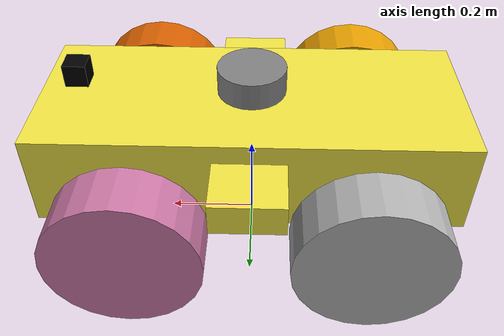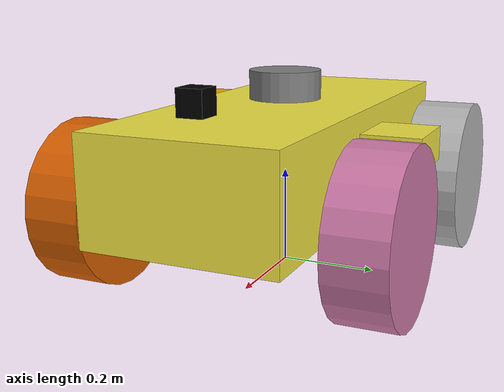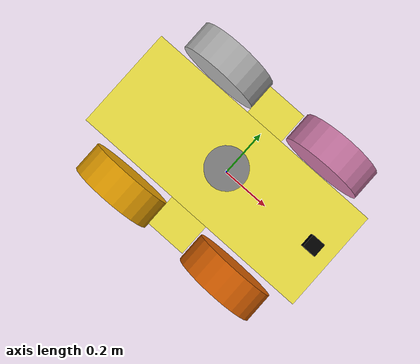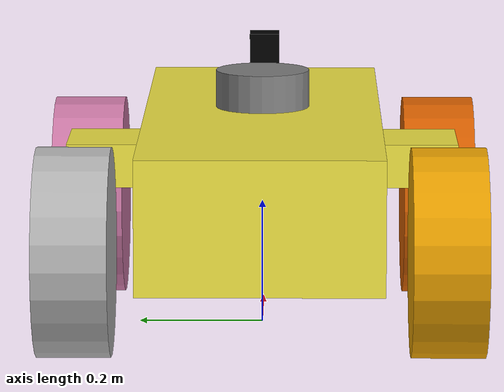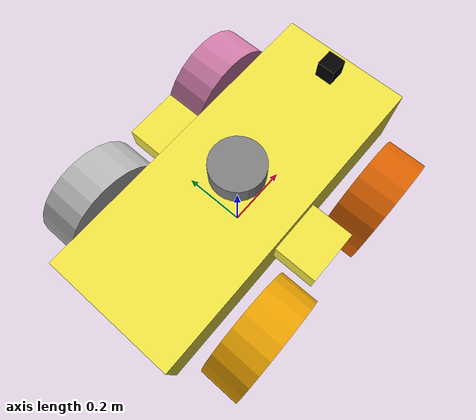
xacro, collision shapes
<?xml version="1.0"?>

<robot name="scout_v2" xmlns:xacro="http://ros.org/wiki/xacro">

	<!-- odometry source: world ground truth or wheels encoders -->
	<xacro:arg name="odometry_source" default="ground_truth" />

	<xacro:arg name="sim" default="true" />

	<xacro:include filename="$(find agilex_scout_description)/urdf/robot/scout_v2.urdf.xacro" />
	<xacro:scout_v2 odometry_source="$(arg odometry_source)" sim="$(arg sim)" />

	<xacro:unless value="$(arg sim)">

		<xacro:include filename="$(find agilex_scout_description)/urdf/sensors/os1.urdf" />

		<joint name="os1_joint" type="fixed">
			<origin xyz="0.2 0.0 0.64" rpy="0.0 0.0 0.0" />
			<parent link="mobile_robot_base_link" />
			<child link="os_sensor" />
		</joint>

	</xacro:unless>

</robot>

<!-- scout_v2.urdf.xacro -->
<robot name="scout_v2" xmlns:xacro="http://ros.org/wiki/xacro">

	<xacro:macro name="scout_v2" params="odometry_source sim">

		<!-- Collision boxes geometries -->
		<xacro:property name="base_x_size" value="0.9250000" />
		<xacro:property name="base_y_size" value="0.380000" />
		<xacro:property name="base_z_size" value="0.210000" />

		<!-- Vehicle geometries -->
		<xacro:property name="wheelbase" value="0.498" />
		<xacro:property name="track" value="0.58306" />
		<xacro:property name="wheel_vertical_offset" value="-0.0702" />

		<xacro:property name="wheel_length" value="1.1653e-01" />
		<xacro:property name="wheel_radius" value="1.6459e-01" />

		<!-- Virtual joints to link to ground and to odom -->
		<link name="base_footprint" />

		<link name="base_footprint_inertial_link">
			<inertial>
				<mass value="50" />
				<origin xyz="0.0 0.0 0.0" />
				<inertia ixx="2.288641" ixy="0" ixz="0" iyy="5.103976" iyz="0" izz="3.431465" />
			</inertial>
		</link>

		<joint name="base_footprint_inertial_joint" type="fixed">
			<origin xyz="0 0 0" rpy="0 0 0" />
			<parent link="base_footprint" />
			<child link="base_footprint_inertial_link" />
		</joint>

		<joint name="base_footprint_to_base_link" type="fixed">
			<origin xyz="0 0 ${wheel_radius - wheel_vertical_offset}" rpy="0 0 0" />
			<parent link="base_footprint" />
			<child link="base_link" />
		</joint>

		<link name="base_link" />

		<joint name="base_link_to_mobile_robot" type="fixed">
			<origin xyz="0 0 0" rpy="0 0 0" />
			<parent link="base_link" />
			<child link="mobile_robot_base_link" />
		</joint>

		<!-- Base link -->
		<link name="mobile_robot_base_link">
			<visual>
				<origin xyz="0 0 0" rpy="0 0 0" />
				<geometry>
					<mesh filename="file://$(find agilex_scout_description)/meshes/robot/mobile_robot_base_link.dae" />
				</geometry>
			</visual>
			<collision>
				<origin xyz="0 0 0.008" rpy="0 0 0" />
				<geometry>
					<box size="${base_x_size} ${base_y_size} ${base_z_size}" />
				</geometry>
			</collision>
			<collision>
				<origin xyz="0 0 ${base_z_size/6}" rpy="0 0 0" />
				<geometry>
					<box size="${base_x_size/6} ${base_y_size*1.65} ${base_z_size/3}" />
				</geometry>
			</collision>
		</link>

		<link name="inertial_link">
			<inertial>
				<mass value="50" />
				<origin xyz="0.0 0.0 0.0" />
				<inertia ixx="2.288641" ixy="0" ixz="0" iyy="5.103976" iyz="0" izz="3.431465" />
			</inertial>
		</link>

		<joint name="inertial_joint" type="fixed">
			<origin xyz="0 0 0" rpy="0 0 0" />
			<parent link="mobile_robot_base_link" />
			<child link="inertial_link" />
		</joint>

		<!-- Scout wheel macros -->
		<xacro:include filename="$(find agilex_scout_description)/urdf/robot/scout_wheel_type1.xacro" />
		<xacro:include filename="$(find agilex_scout_description)/urdf/robot/scout_wheel_type2.xacro" />

		<xacro:scout_wheel_type1 wheel_prefix="front_right" x="${wheelbase/2}" y="${-track/2}" z="${wheel_vertical_offset}" phi="0" />
		<xacro:scout_wheel_type2 wheel_prefix="front_left" x="${wheelbase/2}" y="${track/2}" z="${wheel_vertical_offset}" phi="0" />
		<xacro:scout_wheel_type1 wheel_prefix="rear_left" x="${-wheelbase/2}" y="${track/2}" z="${wheel_vertical_offset}" phi="0" />
		<xacro:scout_wheel_type2 wheel_prefix="rear_right" x="${-wheelbase/2}" y="${-track/2}" z="${wheel_vertical_offset}" phi="0" />

		<link name="front_mount" />

		<joint name="front_mount_joint" type="fixed">
			<origin xyz="0.325 0.0 0.112701" rpy="0 0 0" />
			<parent link="mobile_robot_base_link" />
			<child link="front_mount" />
		</joint>

		<link name="rear_mount" />

		<joint name="rear_mount_joint" type="fixed">
			<origin xyz="-0.325 0.0 0.112701" rpy="0 0 0" />
			<parent link="mobile_robot_base_link" />
			<child link="rear_mount" />
		</joint>

		<!-- Gazebo definitions  -->
		<xacro:if value="${sim}">
			<xacro:include filename="$(find agilex_scout_description)/urdf/robot/scout_v2.gazebo" />
		</xacro:if>

		<!-- Camera: ADDED TO HAVE IMAGES FOR THE MEMORY GRAPH -->
		<link name="camera_link">
            <visual>
                <geometry>
                    <box size="0.05 0.05 0.05"/>
                </geometry>
                <material name="black">
                    <color rgba="0 0 0 1"/>
                </material>
            </visual>
            <collision>
                <geometry>
                    <box size="0.05 0.05 0.05"/>
                </geometry>
            </collision>
            <inertial>
                <mass value="0.1"/>
                <inertia ixx="0.0001" ixy="0" ixz="0" iyy="0.0001" iyz="0" izz="0.0001"/>
            </inertial>
        </link>

        <joint name="camera_joint" type="fixed">
            <origin xyz="0.05 0 0.05" rpy="0 0 0"/>
            <parent link="front_mount"/>
            <child link="camera_link"/>
        </joint>

        <gazebo reference="camera_link">
            <sensor name="scout_camera" type="camera">
                <pose>0 0 0 0 0 0</pose>
                <visualize>true</visualize>
                <update_rate>30</update_rate>
                <topic>camera/image_raw</topic> <camera>
                    <horizontal_fov>1.36136</horizontal_fov>
                    <image>
                        <width>1920</width>
                        <height>1080</height>
                        <format>R8G8B8</format>
                    </image>
                    <clip>
                        <near>0.1</near>
                        <far>100</far>
                    </clip>
                </camera>
            </sensor>
        </gazebo>

	</xacro:macro>

</robot>

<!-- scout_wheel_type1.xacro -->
<robot xmlns:xacro="http://ros.org/wiki/xacro" name="scout_v2">

	<xacro:macro name="scout_wheel_type1" params="wheel_prefix x y z phi">

		<link name="${wheel_prefix}_wheel_link">
			<inertial>
				<mass value="8" />
				<origin xyz="0 0 0" />
				<inertia ixx="0.1171" ixy="0" ixz="0" iyy="0.1361" iyz="0" izz="0.1171" />
			</inertial>
			<visual>
				<origin xyz="0 0 0" rpy="0 0 0" />
				<geometry>
					<mesh filename="file://$(find agilex_scout_description)/meshes/robot/wheel_type1.dae" />
				</geometry>
			</visual>
			<collision>
				<origin xyz="0 0 0" rpy="${pi/2} 0 0" />
				<geometry>
					<cylinder length="${wheel_length}" radius="${wheel_radius}" />
				</geometry>
				<surface>
					<contact>
						<ode>
							<min_depth>0.001</min_depth>
							<kp>1000000000.0</kp>
							<kd>0.0</kd>
						</ode>
					</contact>
					<friction>
						<ode>
							<mu>0.9</mu>
							<mu2>0.7</mu2>
							<fdir1>1 0 0</fdir1>
						</ode>
					</friction>
				</surface>
			</collision>
		</link>

		<!-- if gazebo is loaded, simulate the robot wheel rotations and broadcast the join states-->
		<xacro:if value="$(arg sim)">
			<joint name="${wheel_prefix}_wheel" type="continuous">
				<parent link="mobile_robot_base_link" />
				<child link="${wheel_prefix}_wheel_link" />
				<origin xyz="${x} ${y} ${z}" rpy="${phi} 0.0 0.0" />
				<axis xyz="0 1 0" rpy="0 0 0" />
				<dynamics damping="0.0" friction="20" />
			</joint>
		</xacro:if>

		<!-- if real robot is loaded, fixed wheels are used because no joint broadcaster is available -->
		<xacro:unless value="$(arg sim)">
			<joint name="${wheel_prefix}_wheel" type="fixed">
				<parent link="mobile_robot_base_link" />
				<child link="${wheel_prefix}_wheel_link" />
				<origin xyz="${x} ${y} ${z}" rpy="${phi} 0.0 0.0" />
				<axis xyz="0 1 0" rpy="0 0 0" />
			</joint>
		</xacro:unless>

	</xacro:macro>

</robot>

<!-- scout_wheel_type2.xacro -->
<robot xmlns:xacro="http://ros.org/wiki/xacro" name="scout_v2">

	<xacro:macro name="scout_wheel_type2" params="wheel_prefix x y z phi">

		<link name="${wheel_prefix}_wheel_link">
			<inertial>
				<mass value="8" />
				<origin xyz="0 0 0" />
				<inertia ixx="0.1171" ixy="0" ixz="0" iyy="0.1361" iyz="0" izz="0.1171" />
			</inertial>
			<visual>
				<origin xyz="0 0 0" rpy="0 0 0" />
				<geometry>
					<mesh filename="file://$(find agilex_scout_description)/meshes/robot/wheel_type2.dae" />
				</geometry>
			</visual>
			<collision>
				<origin xyz="0 0 0" rpy="${pi/2} 0 0" />
				<geometry>
					<cylinder length="${wheel_length}" radius="${wheel_radius}" />
				</geometry>
				<surface>
					<contact>
						<ode>
							<min_depth>0.001</min_depth>
							<kp>1000000000.0</kp>
							<kd>0.0</kd>
						</ode>
					</contact>
					<friction>
						<ode>
							<mu>0.9</mu>
							<mu2>0.7</mu2>
							<fdir1>1 0 0</fdir1>
						</ode>
					</friction>
				</surface>
			</collision>
		</link>

		<!-- if gazebo is loaded, simulate the robot wheel rotations and broadcast the join states-->
		<xacro:if value="$(arg sim)">
			<joint name="${wheel_prefix}_wheel" type="continuous">
				<parent link="mobile_robot_base_link" />
				<child link="${wheel_prefix}_wheel_link" />
				<origin xyz="${x} ${y} ${z}" rpy="${phi} 0.0 0.0" />
				<axis xyz="0 1 0" rpy="0 0 0" />
				<dynamics damping="0.0" friction="20" />
			</joint>
		</xacro:if>

		<!-- if real robot is loaded, fixed wheels are used because no joint broadcaster is available -->
		<xacro:unless value="$(arg sim)">
			<joint name="${wheel_prefix}_wheel" type="fixed">
				<parent link="mobile_robot_base_link" />
				<child link="${wheel_prefix}_wheel_link" />
				<origin xyz="${x} ${y} ${z}" rpy="${phi} 0.0 0.0" />
				<axis xyz="0 1 0" rpy="0 0 0" />
			</joint>
		</xacro:unless>

	</xacro:macro>

</robot>

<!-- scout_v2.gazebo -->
<robot xmlns:xacro="http://ros.org/wiki/xacro" name="scout_v2">

	<material name="light_grey">
		<color rgba="0.5 0.5 0.5 1" />
	</material>

	<!-- LIDAR link and joint : cylinder on top of the robot center -->
	<link name="lidar_3d">
		<collision>
			<origin xyz="0 0 0" rpy="0 0 0" />
			<geometry>
				<cylinder length="0.06" radius="0.075" />
			</geometry>
		</collision>
		<visual>
			<origin xyz="0 0 0" rpy="0 0 0" />
			<geometry>
				<cylinder length="0.06" radius="0.075" />
			</geometry>
			<material name="light_grey" />
		</visual>
		<inertial>
			<origin xyz="0 0 0" rpy="0 0 0" />
			<mass value="0.1" />
			<inertia ixx="${0.1 *(3*0.075*0.075 + 0.06*0.06)/ 12}" ixy="0" ixz="0"
				iyy="${0.1 *(3*0.075*0.075 + 0.06*0.06)/ 12}"
				iyz="0" izz="${0.1*0.075*0.075 / 2}" />
		</inertial>
	</link>

	<joint name="mobile_robot_to_lidar_3d" type="fixed">
		<parent link="mobile_robot_base_link" />
		<child link="lidar_3d" />
		<origin xyz="0.0 0 0.15" rpy="0 0 0" />
	</joint>

	<gazebo reference="lidar_3d">
		<material name="light_grey" />
	</gazebo>

	<link name="imu_frame" />

	<joint name="mobile_robot_to_imu" type="fixed">
		<parent link="mobile_robot_base_link" />
		<child link="imu_frame" />
		<origin xyz="0.0 0.0 0.08" rpy="0.0 0.0 0.0" />
	</joint>

	<!-- ........................... SENSOR PLUGIN ................................... -->

	<gazebo>
		<plugin filename="gz-sim-sensors-system" name="gz::sim::systems::Sensors">
			<render_engine>ogre2</render_engine>
		</plugin>

		<plugin filename="gz-sim-imu-system" name="gz::sim::systems::Imu">
		</plugin>

		<plugin filename="gz-sim-joint-state-publisher-system"
			name="gz::sim::systems::JointStatePublisher">
		</plugin>
	</gazebo>

	<!-- ........................... DIFFERENTIAL DRIVE PLUGIN ................................... -->

	<gazebo>
		<plugin
			filename="gz-sim-diff-drive-system"
			name="gz::sim::systems::DiffDrive">
			<left_joint>front_left_wheel</left_joint>
			<left_joint>rear_left_wheel</left_joint>
			<right_joint>front_right_wheel</right_joint>
			<right_joint>rear_right_wheel</right_joint>
			<wheel_separation>${track}</wheel_separation>
			<wheel_radius>${wheel_radius}</wheel_radius>
			<topic>/scout/cmd_vel</topic>
			<xacro:if value="${odometry_source == 'encoders'}">
				<!-- NOTE: odometry source from wheel encoders not working for skid steering kinematics robot -->
				<odom_topic>/scout/odometry</odom_topic>
				<odom_publish_frequency>50</odom_publish_frequency>
				<tf_topic>/scout/tf</tf_topic>
			</xacro:if>
			<frame_id>odom</frame_id>
			<child_frame_id>base_footprint</child_frame_id>
			<max_linear_acceleration>2</max_linear_acceleration>
			<min_linear_acceleration>-2</min_linear_acceleration>
			<max_angular_acceleration>1</max_angular_acceleration>
			<min_angular_acceleration>-1</min_angular_acceleration>
			<max_linear_velocity>10</max_linear_velocity>
			<min_linear_velocity>-10</min_linear_velocity>
			<max_angular_velocity>1</max_angular_velocity>
			<min_angular_velocity>-1</min_angular_velocity>
		</plugin>
	</gazebo>

	<!-- ........................... IMU config ................................... -->

	<gazebo reference="imu_frame">
		<sensor name="imu_sensor" type="imu">
			<always_on>1</always_on>
			<update_rate>1</update_rate>
			<gz_frame_id>imu_frame</gz_frame_id>
			<visualize>true</visualize>
			<topic>/scout/imu</topic>
		</sensor>
	</gazebo>

	<!-- ............................. ground truth .................................... -->

	<!-- NOTE: only source of odometry actually working for a skid steering robot -->
	<xacro:if value="${odometry_source == 'ground_truth'}">
		<gazebo>
			<plugin filename="gz-sim-odometry-publisher-system"
				name="gz::sim::systems::OdometryPublisher">
				<odom_frame>odom</odom_frame>
				<robot_base_frame>base_footprint</robot_base_frame>
				<odom_topic>/scout/odometry</odom_topic>
				<tf_topic>/scout/tf</tf_topic>
				<dimensions>2</dimensions>
				<odom_publish_frequency>50</odom_publish_frequency>
				<gaussian_noise>0.001</gaussian_noise>
			</plugin>
		</gazebo>
	</xacro:if>

	<!-- ........................... 3D LIDAR = POINTCLOUD ................................... -->

	<gazebo reference="lidar_3d">
		<sensor name='gpu_lidar' type='gpu_lidar'>
			<topic>/scout/pointcloud</topic>
			<update_rate>10</update_rate>
			<gz_frame_id>lidar_3d</gz_frame_id>
			<lidar>
				<scan>
					<horizontal>
						<samples>1024</samples>
						<resolution>0.001</resolution>
						<min_angle>-3.14</min_angle>
						<max_angle>+3.14</max_angle>
					</horizontal>
					<vertical>
						<samples>32</samples>
						<resolution>0.001</resolution>
						<min_angle>-0.393</min_angle>
						<max_angle>0.393</max_angle>
					</vertical>
				</scan>
				<range>
					<min>0.6</min>
					<max>50.0</max>
					<resolution>0.005</resolution>
				</range>
				<noise>
					<type>gaussian</type>
					<mean>0.0</mean>
					<stddev>0.001</stddev>
				</noise>
			</lidar>
			<alwaysOn>1</alwaysOn>
			<visualize>true</visualize>
		</sensor>
	</gazebo>

</robot>
